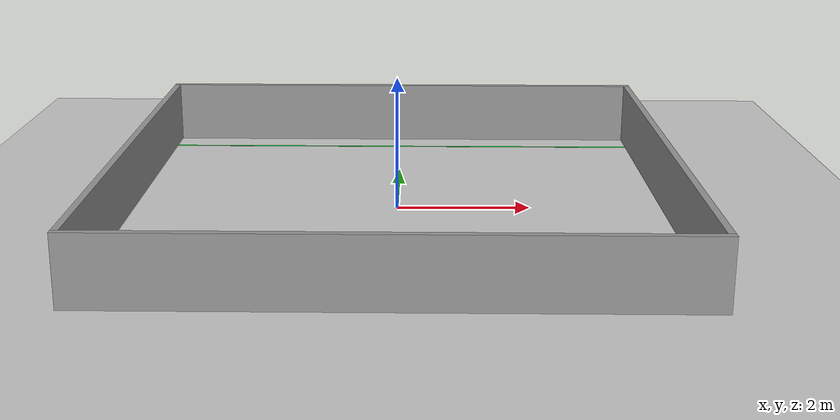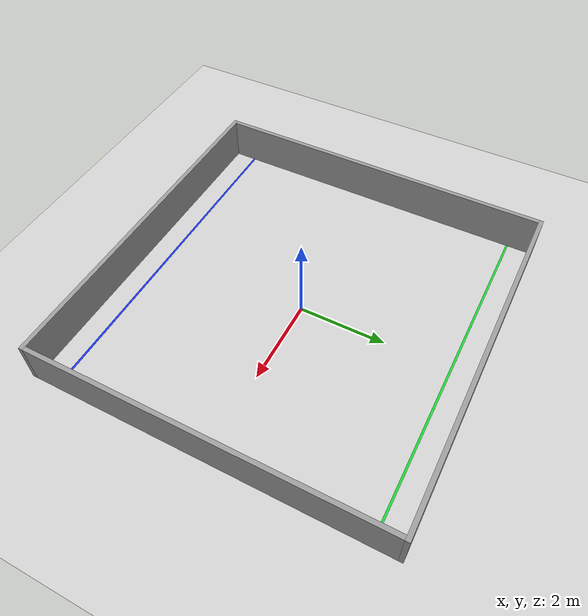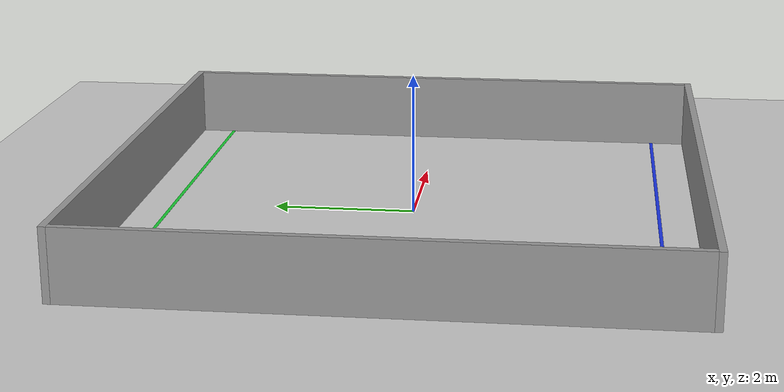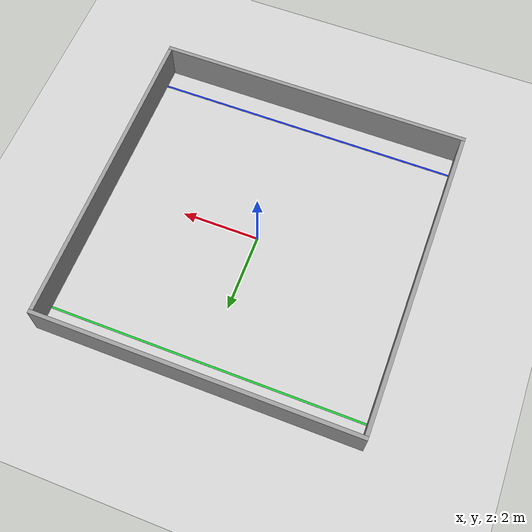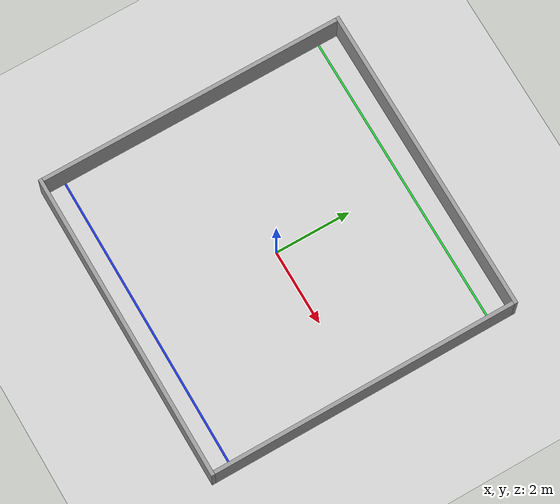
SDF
<?xml version="1.0" ?>
<sdf version="1.6">
  <world name="circle_arena">

    <include><uri>model://sun</uri></include>
    <include><uri>model://ground_plane</uri></include>

    <!-- 10 physics substeps per 20 Hz policy tick — matches pygame dt=0.05s -->
    <physics type="ode">
      <max_step_size>0.005</max_step_size>
      <real_time_factor>1.0</real_time_factor>
      <real_time_update_rate>200</real_time_update_rate>
    </physics>

    <!-- Spawn line: blue strip at y = -3.5, spanning x in [-4, 4] -->
    <model name="spawn_line">
      <static>true</static>
      <pose>0 -3.5 0.001 0 0 0</pose>
      <link name="link">
        <visual name="vis">
          <geometry><box><size>8.0 0.05 0.002</size></box></geometry>
          <material>
            <ambient>0.1 0.2 0.9 1</ambient>
            <diffuse>0.1 0.2 0.9 1</diffuse>
          </material>
        </visual>
      </link>
    </model>

    <!-- Goal line: green strip at y = +3.5 -->
    <model name="goal_line">
      <static>true</static>
      <pose>0 3.5 0.001 0 0 0</pose>
      <link name="link">
        <visual name="vis">
          <geometry><box><size>8.0 0.05 0.002</size></box></geometry>
          <material>
            <ambient>0.1 0.8 0.2 1</ambient>
            <diffuse>0.1 0.8 0.2 1</diffuse>
          </material>
        </visual>
      </link>
    </model>

    <model name="wall_north">
      <static>true</static>
      <pose>0 4.05 0.5 0 0 0</pose>
      <link name="link">
        <collision name="col"><geometry><box><size>8.2 0.1 1.0</size></box></geometry></collision>
        <visual name="vis">
          <geometry><box><size>8.2 0.1 1.0</size></box></geometry>
          <material>
            <ambient>0.6 0.6 0.6 1</ambient>
            <diffuse>0.6 0.6 0.6 1</diffuse>
          </material>
        </visual>
      </link>
    </model>

    <model name="wall_south">
      <static>true</static>
      <pose>0 -4.05 0.5 0 0 0</pose>
      <link name="link">
        <collision name="col"><geometry><box><size>8.2 0.1 1.0</size></box></geometry></collision>
        <visual name="vis">
          <geometry><box><size>8.2 0.1 1.0</size></box></geometry>
          <material>
            <ambient>0.6 0.6 0.6 1</ambient>
            <diffuse>0.6 0.6 0.6 1</diffuse>
          </material>
        </visual>
      </link>
    </model>

    <model name="wall_east">
      <static>true</static>
      <pose>4.05 0 0.5 0 0 0</pose>
      <link name="link">
        <collision name="col"><geometry><box><size>0.1 8.0 1.0</size></box></geometry></collision>
        <visual name="vis">
          <geometry><box><size>0.1 8.0 1.0</size></box></geometry>
          <material>
            <ambient>0.6 0.6 0.6 1</ambient>
            <diffuse>0.6 0.6 0.6 1</diffuse>
          </material>
        </visual>
      </link>
    </model>

    <model name="wall_west">
      <static>true</static>
      <pose>-4.05 0 0.5 0 0 0</pose>
      <link name="link">
        <collision name="col"><geometry><box><size>0.1 8.0 1.0</size></box></geometry></collision>
        <visual name="vis">
          <geometry><box><size>0.1 8.0 1.0</size></box></geometry>
          <material>
            <ambient>0.6 0.6 0.6 1</ambient>
            <diffuse>0.6 0.6 0.6 1</diffuse>
          </material>
        </visual>
      </link>
    </model>

    <!-- gazebo_ros_state: publishes /model_states (all robot poses+twists)
         and exposes /set_entity_state service for teleporting models. -->
    <plugin name="gazebo_ros_state" filename="libgazebo_ros_state.so">
      <ros>
        <namespace>/</namespace>
      </ros>
      <update_rate>50.0</update_rate>
    </plugin>

  </world>
</sdf>
